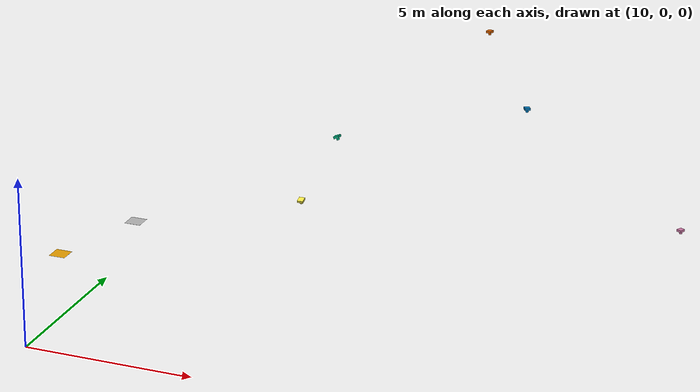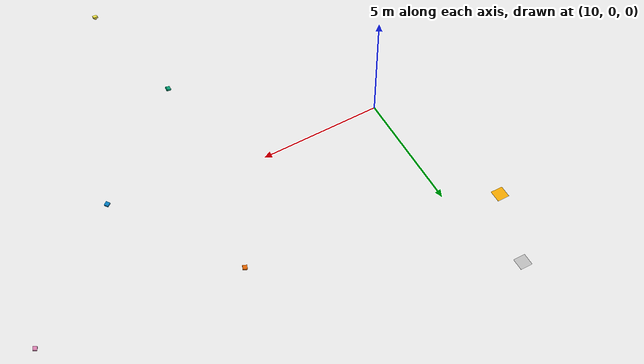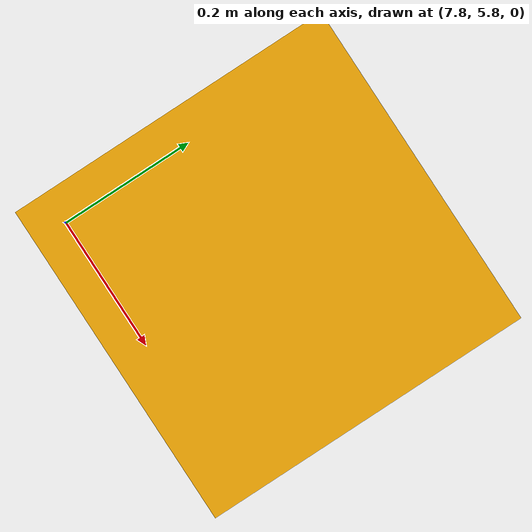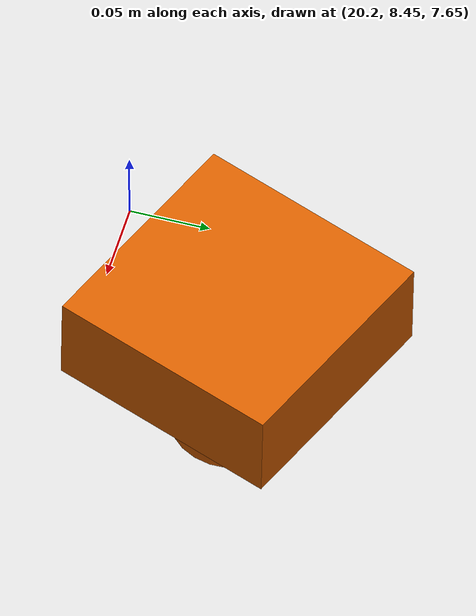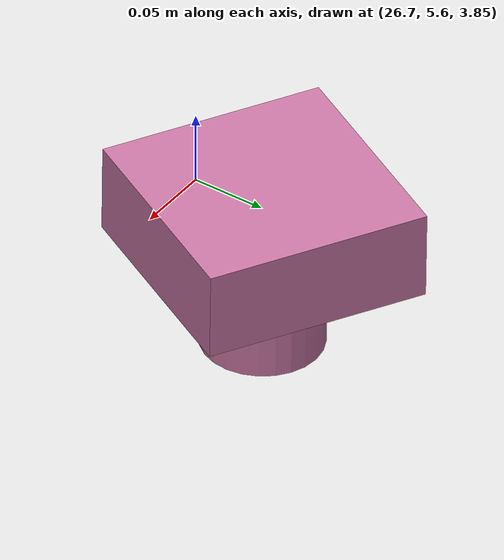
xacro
<?xml version="1.0"?>
<robot xmlns:xacro="http://www.ros.org/wiki/xacro"  name="robot">

    <xacro:include filename="properties.xacro" />
    <xacro:include filename="camera_macros.xacro"/>
    <xacro:include filename="aruco_macros.xacro" />
    <!-- DEFINE INERTIA FOR ALL LINKS, GAZEBO COMPLAINS OTHERWISE-->

    <link name="world">
    </link>

    <link name="base_link">
        <xacro:inertial_box mass="0.1" x="0.12" y="0.15" z="0.15"/>
    </link>

    <joint name="base_joint" type="fixed">
        <origin xyz="0 0 0" rpy="0 0 0"/>
        <parent link="world"/>
        <child link="base_link"/>
    </joint>

    <xacro:include filename="camera_config.xacro" />

    <xacro:aruco number="1" x="9" y="9" z="0.001" r="0" p="0" w="0"/>
    <xacro:aruco number="2" x="8" y="6" z="0.001" r="0" p="0" w="0"/>
</robot>

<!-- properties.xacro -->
<robot xmlns:xacro="http://www.ros.org/wiki/xacro" >

    <material name="white">
        <color rgba="1 1 1 1"/>
    </material>

    <material name="orange">
        <color rgba="1 0.3 0.1 1"/>
    </material>

    <material name="blue">
        <color rgba="0.2 0.2 1 1"/>
    </material>

    <xacro:macro name="inertial_box" params="mass x y z">
        <inertial>
            <mass value="${mass}" />
            <inertia ixx="${(1/12) * mass * (y*y+z*z)}" ixy="0.0" ixz="0.0"
                    iyy="${(1/12) * mass * (x*x+z*z)}" iyz="0.0"
                    izz="${(1/12) * mass * (x*x+y*y)}" />
        </inertial>
    </xacro:macro>

    <xacro:property name="camera_fov" value="1.02974"/>
    <xacro:property name="camera_resolution_width" value="1920"/>
    <xacro:property name="camera_resolution_height" value="1080"/>
    <xacro:property name="camera_update_rate" value="30"/>

</robot>

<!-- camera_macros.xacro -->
<robot xmlns:xacro="http://www.ros.org/wiki/xacro">

    <xacro:macro name="camera_link" params="number">
        <link name="camera_${number}_link">
          <visual>
              <origin xyz="-0.03 0 0" rpy="0 0 0"/>
              <geometry>
                  <box size="0.06 0.15 0.15" />
              </geometry>
          </visual>
          <visual>
              <origin xyz="0.03 0 0" rpy="0 ${pi/2} 0"/>
              <geometry>
                  <cylinder length="0.06" radius="0.04" />
              </geometry>
          </visual>
        </link>
        <xacro:inertial_box mass="0.1" x="0.12" y="0.15" z="0.15"/>
    </xacro:macro>

    <xacro:macro name="camera_joint" params="number x y z r p w">
        <joint name="camera_${number}_joint" type="fixed">
            <origin xyz="${x} ${y} ${z}" rpy="${r} ${p} ${w}"/>
            <parent link="base_link"/>
            <child link="camera_${number}_link"/>
        </joint>
    </xacro:macro>

    <xacro:macro name="camera_gazebo" params="number width height k1 k2 k3 p1 p2 horizental_fov aspect_ratio">
        <gazebo reference="camera_${number}_link">
            <sensor name="camera_${number}" type="camera">
                <always_on>true</always_on>
                <visualize>true</visualize>
                <update_rate>1</update_rate>
                <camera name="intel_realsense_r200">
                  <horizontal_fov>${horizental_fov}</horizontal_fov>
                  <aspect_ratio>${aspect_ratio}</aspect_ratio>
                  <image>
                    <width>${width}</width>
                    <height>${height}</height>
                    <format>R8G8B8</format>
                  </image>
                    <distortion>
                        <k1>${k1}</k1>
                        <k2>${k2}</k2>
                        <k3>${k3}</k3>
                        <p1>${p1}</p1>
                        <p2>${p2}</p2>
                    </distortion>

                </camera>
                  <plugin name="camera_driver_${number}" filename="libgazebo_ros_camera.so">
                  </plugin>
              </sensor>
        </gazebo>
    </xacro:macro>

    <xacro:macro name="camera" params="number x y z r p w width height k1 k2 k3 p1 p2 horizental_fov aspect_ratio">
        <xacro:camera_link number="${number}"/>
        <xacro:camera_joint number="${number}" x="${x}" y="${y}" z="${z}" r="${r}" p="${p}" w="${w}"/>
        <xacro:camera_gazebo number="${number}" width="${width}" height="${height}" k1="${k1}" k2="${k2}" k3="${k3}" p1="${p1}" p2="${p2}" horizental_fov="${horizental_fov}" aspect_ratio="${aspect_ratio}"  />
    </xacro:macro>

</robot>

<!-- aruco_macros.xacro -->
<robot xmlns:xacro="http://www.ros.org/wiki/xacro">

    <xacro:macro name="aruco_link" params="number">
        <link name="aruco_${number}_link">
            <visual>
                <origin xyz="0 0 0" rpy="0 0 0"/>
                <geometry>
                    <box size="0.5 0.5 .001"/>
                </geometry>
            </visual>
        </link>
        <xacro:inertial_box mass="0.1" x="0.12" y="0.15" z="0.15"/>
    </xacro:macro>

    <xacro:macro name="aruco_joint" params="attach_to number x y z r p w">
        <joint name="aruco_${number}_joint" type="fixed">
            <origin xyz="${x} ${y} ${z}" rpy="${r} ${p} ${w}"/>
            <parent link="${attach_to}"/>
            <child link="aruco_${number}_link"/>
        </joint>
    </xacro:macro>

   <xacro:macro name="aruco_gazebo" params="number">
        <gazebo reference="aruco_${number}_link">
            <static>true</static>
            <visual name="aruco_front_face">
                <pose>0.00005 0 0 0 0 0</pose>
                <geometry>
                    <box>
                        <size>0.0001 0.5 0.5</size>
                    </box>
                </geometry>
                <material>
                    <script>
                        <uri>model://aruco/materials/scripts</uri>
                        <uri>model://aruco/materials/textures</uri>
                        <name>aruco_${number}</name>
                    </script>
                </material>
            </visual>
            <visual name="aruco_back_face">
                <pose>-0.00005 0 0 0 0 0</pose>
                <geometry>
                    <box>
                        <size>0.0001 0.5 0.5</size>
                    </box>
                </geometry>
            </visual>
        </gazebo>
   </xacro:macro>

   <xacro:macro name="aruco" params="number x y z r p w">
        <xacro:attach_aruco attach_to="base_link" number="${number}" x="${x}" y="${y}" z="${z}" r="${r}" p="${p}" w="${w}"/>
   </xacro:macro>

    <xacro:macro name="attach_aruco" params="attach_to number x y z r p w">
            <xacro:aruco_link number="${number}"/>
            <xacro:aruco_joint attach_to="${attach_to}" number="${number}" x="${x}" y="${y}" z="${z}" r="${r}" p="${p}" w="${w}"/>
            <xacro:aruco_gazebo number="${number}"/>
    </xacro:macro>
</robot>
